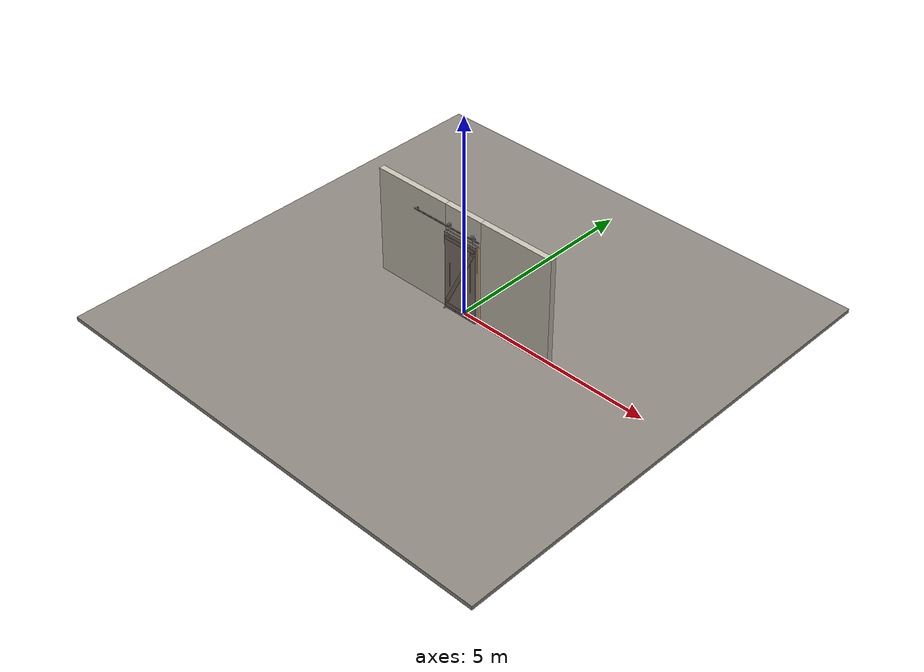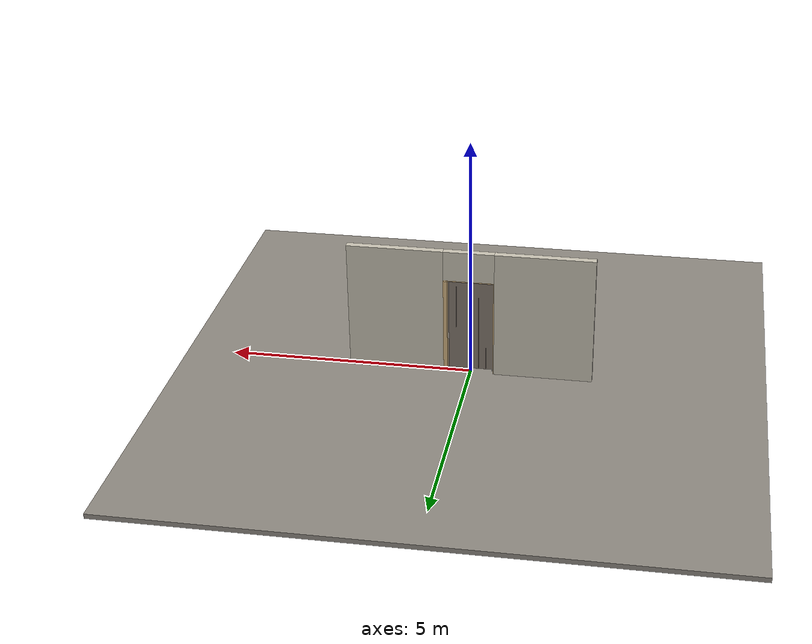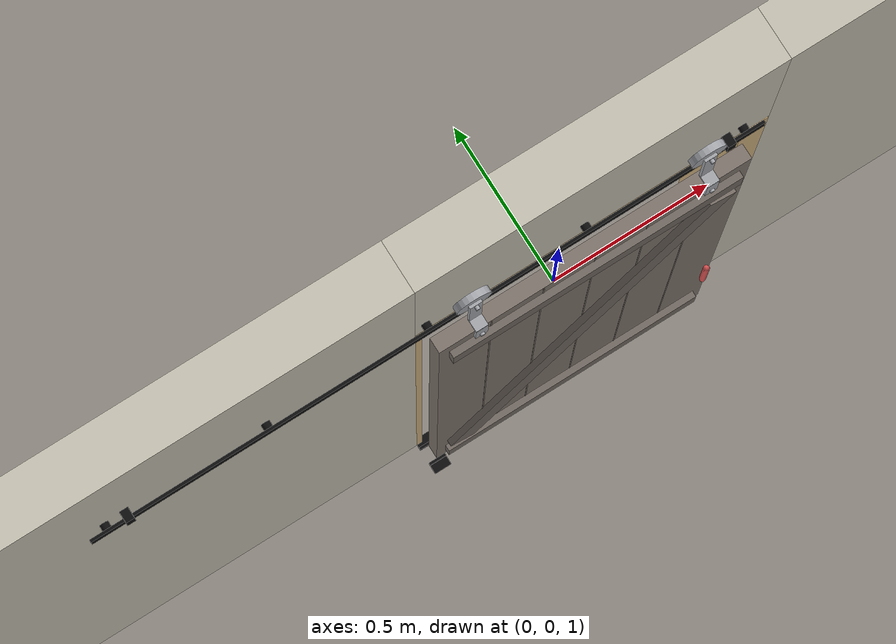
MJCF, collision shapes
<?xml version="1.0" ?>
<mujoco model="db0510_sliding_single_full">
  <compiler angle="radian" meshdir="../../hardware" texturedir="../../textures" autolimits="true" inertiafromgeom="false"/>
  <option timestep="0.002" integrator="implicitfast" cone="elliptic" impratio="10" noslip_iterations="3">
    <flag multiccd="enable"/>
  </option>
  <size memory="16M"/>
  <default>
    <geom condim="4" solref="0.005 1" solimp="0.95 0.99 0.001"/>
    <joint solreflimit="0.005 1" solimplimit="0.95 0.99 0.001"/>
    <tendon solreflimit="0.005 1"/>
    <equality solref="0.002 1"/>
  </default>
  <visual>
    <headlight ambient="0.4 0.4 0.4" diffuse="0.7 0.7 0.7" specular="0.2 0.2 0.2"/>
    <quality shadowsize="4096"/>
    <map znear="0.01" zfar="60"/>
  </visual>
  <asset>
    <mesh name="pull_1e5d69a91a" file="pull_1e5d69a91a.obj"/>
    <material name="mat_floor" rgba="0.55 0.53 0.5 1" specular="0.2" shininess="0.15" reflectance="0"/>
    <material name="mat_wall" rgba="0.78 0.76 0.7 1" specular="0.2" shininess="0.1" reflectance="0"/>
    <material name="mat_frame" rgba="0.82 0.7 0.5 1" specular="0.2" shininess="0.45" reflectance="0"/>
    <material name="mat_track" rgba="0.05 0.05 0.05 1" specular="0.38" shininess="0.3" reflectance="0.12"/>
    <material name="mat_leaf" rgba="0.5 0.46 0.425 1" specular="0.2" shininess="0.15" reflectance="0"/>
    <material name="mat_leaf_brace" rgba="0.45 0.414 0.383 1" specular="0.2" shininess="0.2" reflectance="0"/>
    <material name="mat_roller" rgba="0.65 0.66 0.68 1" specular="0.74" shininess="0.5" reflectance="0.36"/>
    <material name="mat_op_stainless" rgba="0.75 0.76 0.77 1" specular="0.8" shininess="0.65" reflectance="0.4"/>
    <material name="mat_hook" rgba="0.75 0.76 0.77 1" specular="0.8" shininess="0.65" reflectance="0.4"/>
    <texture name="skybox" type="skybox" builtin="gradient" rgb1="0.6 0.7 0.85" rgb2="0.9 0.92 0.95" width="256" height="256"/>
  </asset>
  <worldbody>
    <light name="sun" pos="1.5 -2.5 4" dir="-0.3 0.5 -0.8" directional="true" diffuse="0.8 0.8 0.8" specular="0.3 0.3 0.3" castshadow="true"/>
    <light name="fill" pos="-1.5 2.5 3" dir="0.3 -0.5 -0.7" directional="true" diffuse="0.35 0.35 0.4" castshadow="false"/>
    <camera name="robot_view" pos="0 -2.54875 1.73965" xyaxes="1 0 0 0 0.26963 0.962964" fovy="52"/>
    <camera name="far_view" pos="0 2.54875 1.73965" xyaxes="-1 0 0 0 -0.26963 0.962964" fovy="52"/>
    <camera name="iso" pos="1.93705 -2.14095 2.14745" xyaxes="0.741536 0.670913 0 -0.242917 0.268487 0.932151" fovy="46"/>
    <camera name="detail_handle" pos="0.547 -0.9965 1.23" xyaxes="0.97561 0.219512 0 -0.070934 0.315262 0.94635" fovy="38"/>
    <geom name="floor" type="box" size="6 6 0.05" pos="0 0 -0.05" material="mat_floor" group="0" contype="1" conaffinity="1" friction="0.8 0.005 0.0001" density="2400"/>
    <geom name="wall_left" type="box" size="1.007 0.0725 1.35" pos="-1.493 0 1.35" material="mat_wall" group="0" contype="1" conaffinity="1" friction="0.6 0.005 0.0001" density="800"/>
    <geom name="wall_right" type="box" size="0.977 0.0725 1.35" pos="1.523 0 1.35" material="mat_wall" group="0" contype="1" conaffinity="1" friction="0.6 0.005 0.0001" density="800"/>
    <geom name="wall_header" type="box" size="0.516 0.0725 0.3145" pos="0.03 0 2.3855" material="mat_wall" group="0" contype="1" conaffinity="1" friction="0.6 0.005 0.0001" density="800"/>
    <geom name="jamb_l" type="box" size="0.0095 0.0725 1.026" pos="-0.4765 0 1.026" material="mat_frame" group="0" contype="1" conaffinity="1" friction="0.6 0.005 0.0001" density="300"/>
    <geom name="jamb_head" type="box" size="0.486 0.0725 0.0095" pos="0 0 2.0615" material="mat_frame" group="0" contype="1" conaffinity="1" friction="0.6 0.005 0.0001" density="300"/>
    <geom name="flat_track" type="box" size="0.964 0.004 0.02" pos="-0.457 -0.0945 2.172" material="mat_track" group="0" contype="1" conaffinity="1" friction="0.6 0.005 0.0001" density="7850"/>
    <geom name="track_standoff_0" type="cylinder" size="0.012 0.009" pos="-1.371 -0.0815 2.172" quat="0.707107 -0.707107 0 0" material="mat_track" group="1" contype="0" conaffinity="0" density="7850"/>
    <geom name="track_standoff_1" type="cylinder" size="0.012 0.009" pos="-0.914 -0.0815 2.172" quat="0.707107 -0.707107 0 0" material="mat_track" group="1" contype="0" conaffinity="0" density="7850"/>
    <geom name="track_standoff_2" type="cylinder" size="0.012 0.009" pos="-0.457 -0.0815 2.172" quat="0.707107 -0.707107 0 0" material="mat_track" group="1" contype="0" conaffinity="0" density="7850"/>
    <geom name="track_standoff_3" type="cylinder" size="0.012 0.009" pos="0 -0.0815 2.172" quat="0.707107 -0.707107 0 0" material="mat_track" group="1" contype="0" conaffinity="0" density="7850"/>
    <geom name="track_standoff_4" type="cylinder" size="0.012 0.009" pos="0.457 -0.0815 2.172" quat="0.707107 -0.707107 0 0" material="mat_track" group="1" contype="0" conaffinity="0" density="7850"/>
    <geom name="leaf_track_stop_l" type="box" size="0.012 0.016 0.027" pos="-1.313 -0.0945 2.217" material="mat_track" group="0" contype="1" conaffinity="1" friction="0.6 0.005 0.0001" density="7850"/>
    <geom name="leaf_track_stop_r" type="box" size="0.012 0.016 0.027" pos="0.399 -0.0945 2.217" material="mat_track" group="0" contype="1" conaffinity="1" friction="0.6 0.005 0.0001" density="7850"/>
    <geom name="jamb_latch_0" type="box" size="0.0395 0.0725 1.026" pos="0.5065 0 1.026" material="mat_frame" group="0" contype="1" conaffinity="1" friction="0.6 0.005 0.0001" density="300"/>
    <geom name="floor_guide_n" type="box" size="0.028 0.004 0.009" pos="-0.457 -0.1415 0.009" material="mat_track" group="0" contype="1" conaffinity="1" friction="0.6 0.005 0.0001" density="7850"/>
    <geom name="floor_guide_n_foot" type="box" size="0.028 0.018 0.002" pos="-0.457 -0.1555 0.002" material="mat_track" group="0" contype="1" conaffinity="1" friction="0.6 0.005 0.0001" density="7850"/>
    <geom name="floor_guide_p" type="box" size="0.028 0.004 0.009" pos="-0.457 -0.0875 0.009" material="mat_track" group="0" contype="1" conaffinity="1" friction="0.6 0.005 0.0001" density="7850"/>
    <geom name="floor_guide_p_foot" type="box" size="0.028 0.018 0.002" pos="-0.457 -0.0735 0.002" material="mat_track" group="0" contype="1" conaffinity="1" friction="0.6 0.005 0.0001" density="7850"/>
    <site name="approach_point" pos="0 -1.5 0" quat="1 0 0 0" size="0.05" rgba="0.2 0.9 0.2 0.5" group="4"/>
    <site name="goal_point" pos="0 1.5 0" quat="1 0 0 0" size="0.05" rgba="0.2 0.9 0.2 0.5" group="4"/>
    <site name="door_plane_center" pos="0 0 1.026" quat="1 0 0 0" size="0.02" rgba="0.2 0.9 0.2 0.5" group="4"/>
    <body name="leaf" pos="0 -0.1145 0">
      <inertial pos="0.003756 0.000057 1.13856" mass="39.725078" quat="0.500257 0.500746 0.497926 -0.501065" diaginertia="2.971188712 16.861277019 19.813754181"/>
      <joint name="leaf_slide" type="slide" axis="-1 0 0" limited="true" range="0 0.914" damping="3.986254" frictionloss="27.269895" armature="0.5"/>
      <geom name="leaf_slab" type="box" size="0.457 0.022 1.016" pos="0 0 1.028" material="mat_leaf" group="0" contype="1" conaffinity="1" friction="0.45 0.005 0.0001" density="1"/>
      <geom name="leaf_plank_gap_1" type="box" size="0.002 0.023 1.006" pos="-0.304667 0 1.028" material="mat_leaf_brace" group="1" contype="0" conaffinity="0" density="1"/>
      <geom name="leaf_plank_gap_2" type="box" size="0.002 0.023 1.006" pos="-0.152333 0 1.028" material="mat_leaf_brace" group="1" contype="0" conaffinity="0" density="1"/>
      <geom name="leaf_plank_gap_3" type="box" size="0.002 0.023 1.006" pos="0 0 1.028" material="mat_leaf_brace" group="1" contype="0" conaffinity="0" density="1"/>
      <geom name="leaf_plank_gap_4" type="box" size="0.002 0.023 1.006" pos="0.152333 0 1.028" material="mat_leaf_brace" group="1" contype="0" conaffinity="0" density="1"/>
      <geom name="leaf_plank_gap_5" type="box" size="0.002 0.023 1.006" pos="0.304667 0 1.028" material="mat_leaf_brace" group="1" contype="0" conaffinity="0" density="1"/>
      <geom name="leaf_batten_13" type="box" size="0.427 0.01 0.045" pos="0 -0.032 0.132" material="mat_leaf_brace" group="1" contype="0" conaffinity="0" density="1"/>
      <geom name="leaf_batten_192" type="box" size="0.427 0.01 0.045" pos="0 -0.032 1.924" material="mat_leaf_brace" group="1" contype="0" conaffinity="0" density="1"/>
      <geom name="leaf_brace_z" type="box" size="0.874307 0.01 0.045" pos="0 -0.032 1.028" quat="0.847236 0 -0.531217 0" material="mat_leaf_brace" group="1" contype="0" conaffinity="0" density="1"/>
      <geom name="leaf_hanger_wheel_0" type="cylinder" size="0.05 0.01" pos="-0.337 0.02 2.242" quat="0.707107 -0.707107 0 0" material="mat_roller" group="1" contype="0" conaffinity="0" density="7850"/>
      <geom name="leaf_hanger_mount_0" type="box" size="0.018 0.004 0.0725" pos="-0.337 -0.026 1.9965" material="mat_roller" group="1" contype="0" conaffinity="0" density="7850"/>
      <geom name="leaf_hanger_strap_0" type="box" size="0.018 0.004 0.0925" pos="-0.337 0.006 2.1615" material="mat_roller" group="1" contype="0" conaffinity="0" density="7850"/>
      <geom name="leaf_hanger_bend_0" type="box" size="0.018 0.02 0.004" pos="-0.337 -0.01 2.069" material="mat_roller" group="1" contype="0" conaffinity="0" density="7850"/>
      <geom name="leaf_hanger_axle_0" type="cylinder" size="0.006 0.021" pos="-0.337 0.013 2.242" quat="0.707107 -0.707107 0 0" material="mat_roller" group="1" contype="0" conaffinity="0" density="7850"/>
      <geom name="leaf_hanger_bolt_0_90" type="cylinder" size="0.007 0.004" pos="-0.337 -0.032 1.954" quat="0.707107 -0.707107 0 0" material="mat_roller" group="1" contype="0" conaffinity="0" density="7850"/>
      <geom name="leaf_hanger_bolt_0_45" type="cylinder" size="0.007 0.004" pos="-0.337 -0.032 1.999" quat="0.707107 -0.707107 0 0" material="mat_roller" group="1" contype="0" conaffinity="0" density="7850"/>
      <geom name="leaf_hanger_wheel_1" type="cylinder" size="0.05 0.01" pos="0.337 0.02 2.242" quat="0.707107 -0.707107 0 0" material="mat_roller" group="1" contype="0" conaffinity="0" density="7850"/>
      <geom name="leaf_hanger_mount_1" type="box" size="0.018 0.004 0.0725" pos="0.337 -0.026 1.9965" material="mat_roller" group="1" contype="0" conaffinity="0" density="7850"/>
      <geom name="leaf_hanger_strap_1" type="box" size="0.018 0.004 0.0925" pos="0.337 0.006 2.1615" material="mat_roller" group="1" contype="0" conaffinity="0" density="7850"/>
      <geom name="leaf_hanger_bend_1" type="box" size="0.018 0.02 0.004" pos="0.337 -0.01 2.069" material="mat_roller" group="1" contype="0" conaffinity="0" density="7850"/>
      <geom name="leaf_hanger_axle_1" type="cylinder" size="0.006 0.021" pos="0.337 0.013 2.242" quat="0.707107 -0.707107 0 0" material="mat_roller" group="1" contype="0" conaffinity="0" density="7850"/>
      <geom name="leaf_hanger_bolt_1_90" type="cylinder" size="0.007 0.004" pos="0.337 -0.032 1.954" quat="0.707107 -0.707107 0 0" material="mat_roller" group="1" contype="0" conaffinity="0" density="7850"/>
      <geom name="leaf_hanger_bolt_1_45" type="cylinder" size="0.007 0.004" pos="0.337 -0.032 1.999" quat="0.707107 -0.707107 0 0" material="mat_roller" group="1" contype="0" conaffinity="0" density="7850"/>
      <geom name="leaf_pull_n" type="mesh" mesh="pull_1e5d69a91a" pos="0.367 -0.022 0.95" quat="0.707107 0.707107 0 0" material="mat_op_stainless" group="1" contype="0" conaffinity="0" density="3000"/>
      <geom name="leaf_pull_col_n" type="capsule" size="0.0095 0.08" pos="0.367 -0.082 0.95" material="mat_op_stainless" group="3" contype="1" conaffinity="1" rgba="0.8 0.3 0.3 0.25" friction="0.7 0.01 0.0001" density="3000"/>
      <site name="leaf_pull_grip_n" pos="0.367 -0.082 0.95" quat="1 0 0 0" size="0.012" rgba="0.2 0.9 0.2 0.5" group="4"/>
      <site name="leaf_edge_mid" pos="0.457 0 1.028" quat="1 0 0 0" size="0.02" rgba="0.2 0.9 0.2 0.5" group="4"/>
    </body>
  </worldbody>
  <sensor>
    <jointpos name="leaf_slide_pos" joint="leaf_slide"/>
    <jointvel name="leaf_slide_vel" joint="leaf_slide"/>
  </sensor>
</mujoco>
